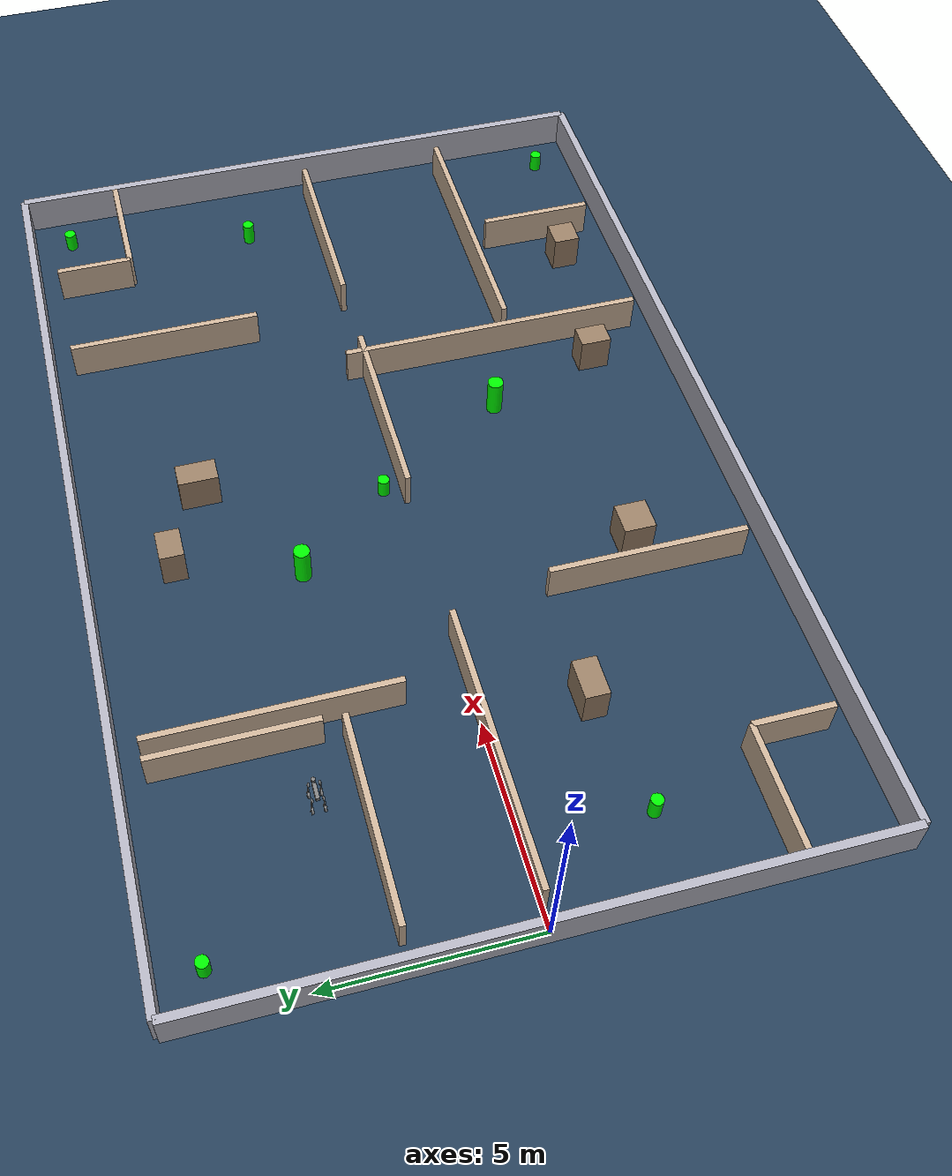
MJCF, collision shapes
<mujoco model="demo2">
  <compiler angle="radian" meshdir="assets" autolimits="true" />
  <option timestep="0.002" gravity="0 0 -9.81" integrator="implicitfast" cone="elliptic" impratio="100" />
  <statistic center="6 0 0.5" extent="8" />
  <visual>
    <headlight diffuse="0.6 0.6 0.6" ambient="0.3 0.3 0.3" specular="0 0 0" />
    <rgba haze="0.15 0.25 0.35 1" />
    <global azimuth="-130" elevation="-20" offwidth="1920" offheight="1080" />
    <quality shadowsize="4096" offsamples="8" />
    <map shadowscale="0.5" shadowclip="1" />
  </visual>
  <default>
    <default class="go2">
      <geom friction="0.4" margin="0.001" condim="1" />
      <joint axis="0 1 0" damping="0.1" armature="0.01" frictionloss="0.2" />
      <motor ctrlrange="-23.7 23.7" />
      <default class="abduction">
        <joint axis="1 0 0" range="-1.0472 1.0472" />
      </default>
      <default class="hip">
        <default class="front_hip">
          <joint range="-1.5708 3.4907" />
        </default>
        <default class="back_hip">
          <joint range="-0.5236 4.5379" />
        </default>
      </default>
      <default class="knee">
        <joint range="-2.7227 -0.83776" />
        <motor ctrlrange="-45.43 45.43" />
      </default>
      <default class="visual">
        <geom type="mesh" contype="0" conaffinity="0" group="2" />
      </default>
      <default class="collision">
        <geom group="3" />
        <default class="foot">
          <geom size="0.022" pos="-0.002 0 -0.2264" priority="1" condim="6" friction="0.8 0.02 0.01" />
        </default>
      </default>
    </default>
    <default class="world">
      <geom contype="1" conaffinity="1" />
    </default>
  </default>
  <asset>
    <texture type="skybox" builtin="gradient" rgb1="0.3 0.5 0.7" rgb2="0 0 0" width="512" height="3072" />
    <texture type="2d" name="groundplane" builtin="checker" mark="edge" rgb1="0.2 0.3 0.4" rgb2="0.1 0.2 0.3" markrgb="0.8 0.8 0.8" width="300" height="300" />
    <material name="groundplane" texture="groundplane" texuniform="true" texrepeat="5 5" reflectance="0.2" />
    <material name="metal" rgba=".9 .95 .95 1" />
    <material name="black" rgba="0 0 0 1" />
    <material name="white" rgba="1 1 1 1" />
    <material name="gray" rgba="0.671705 0.692426 0.774270 1" />
    <mesh file="base_0.obj" />
    <mesh file="base_1.obj" />
    <mesh file="base_2.obj" />
    <mesh file="base_3.obj" />
    <mesh file="base_4.obj" />
    <mesh file="hip_0.obj" />
    <mesh file="hip_1.obj" />
    <mesh file="thigh_0.obj" />
    <mesh file="thigh_1.obj" />
    <mesh file="thigh_mirror_0.obj" />
    <mesh file="thigh_mirror_1.obj" />
    <mesh file="calf_mirror_0.obj" />
    <mesh file="calf_mirror_1.obj" />
    <mesh file="calf.stl" />
    <mesh file="calf_mirror.stl" />
    <mesh file="foot.obj" />
    <mesh file="wheel.stl" />
    <material name="wall_mat" rgba="0.7 0.7 0.75 1" />
    <material name="divider_mat" rgba="0.8 0.7 0.6 1" />
    <material name="green_mat" rgba="0.0 1.0 0.0 1" specular="0.3" />
    <material name="obstacle_mat" rgba="0.6 0.5 0.4 1" />
  </asset>
  <worldbody>
    <light pos="12 0 10" dir="0 0 -1" directional="true" diffuse="0.8 0.8 0.8" castshadow="true" />
    <geom name="ground" type="plane" size="50 50 0.1" material="groundplane" class="world" />
    <body name="base_link" pos="4.0 4.0 0.6" childclass="go2">
      <inertial pos="0.021112 0 -0.005366" quat="-0.000543471 0.713435 -0.00173769 0.700719" mass="6.921" diaginertia="0.107027 0.0980771 0.0244531" />
      <freejoint name="root" />
      <geom mesh="base_0" material="black" class="visual" />
      <geom mesh="base_1" material="black" class="visual" />
      <geom mesh="base_2" material="black" class="visual" />
      <geom mesh="base_3" material="white" class="visual" />
      <geom mesh="base_4" material="gray" class="visual" />
      <geom name="base_collision" size="0.1881 0.04675 0.057" type="box" class="collision" />
      <geom name="head_upper_collision" size="0.05 0.045" pos="0.285 0 0.01" type="cylinder" class="collision" />
      <geom name="head_lower_collision" size="0.047" pos="0.293 0 -0.06" class="collision" />
      <site name="base_link_site" pos="0 0 0" size="0.01" />
      <site name="imu" pos="-0.02557 0 0.04232" size="0.01" />
      <!-- Mid-360 mount tilt: pitch 0.263591 rad (15.10°) + roll -0.036809 rad. Matches real-robot calibration (scripts/real/onboard_fastlio_noetic.sh:258, 2026-04-17). quat = ROS RPY (Rz*Ry*Rx). -->
      <site name="livox_mid360" pos="0.16143 0 0.12262" quat="0.991160 -0.018244 0.131392 0.002418" size="0.01" />
      <camera name="front_camera" pos="0.30 0 -0.01" xyaxes="0 -1 0 0.0872 0 0.9962" fovy="80" resolution="1280 720" mode="fixed" />
      <body name="FL_hip" pos="0.1934 0.0465 0">
        <inertial pos="-0.0054 0.00194 -0.000105" quat="0.497014 0.499245 0.505462 0.498237" mass="0.678" diaginertia="0.00088403 0.000596003 0.000479967" />
        <joint name="FL_hip_joint" class="abduction" />
        <geom mesh="hip_0" material="metal" class="visual" />
        <geom mesh="hip_1" material="gray" class="visual" />
        <geom name="FL_hip_collision" size="0.046 0.02" pos="0 0.08 0" quat="1 1 0 0" type="cylinder" class="collision" />
        <body name="FL_thigh" pos="0 0.0955 0">
          <inertial pos="-0.00374 -0.0223 -0.0327" quat="0.829533 0.0847635 -0.0200632 0.551623" mass="1.152" diaginertia="0.00594973 0.00584149 0.000878787" />
          <joint name="FL_thigh_joint" class="front_hip" />
          <geom mesh="thigh_0" material="metal" class="visual" />
          <geom mesh="thigh_1" material="gray" class="visual" />
          <geom name="FL_thigh_collision" size="0.1065 0.01225 0.017" pos="0 0 -0.1065" quat="0.707107 0 0.707107 0" type="box" class="collision" />
          <body name="FL_calf" pos="0 0 -0.213">
            <inertial pos="0.00629595 -0.000622121 -0.141417" quat="0.710672 0.00154099 -0.00450087 0.703508" mass="0.241352" diaginertia="0.0014901 0.00146356 5.31397e-05" />
            <joint name="FL_calf_joint" class="knee" />
            <geom mesh="calf" material="gray" class="visual" />
            <geom name="FL_calf_upper_collision" size="0.012 0.06" pos="0.008 0 -0.06" quat="0.994493 0 -0.104807 0" type="cylinder" class="collision" />
            <geom name="FL_calf_lower_collision" size="0.011 0.0325" pos="0.02 0 -0.148" quat="0.999688 0 0.0249974 0" type="cylinder" class="collision" />
            <body name="FL_foot" pos="0 0 -0.2264">
              <inertial pos="-0.0 0.04 -0.0" quat="0.661419 0.248219 0.250051 0.662108" mass="0.98" diaginertia="0.003 0.0016 0.0016" />
              <joint name="FL_foot_joint" pos="0 0 0" axis="0 1 0" />
              <geom type="mesh" rgba="0.15 0.15 0.15 1" mesh="wheel" pos="0 0.0 0" quat="0.0 1.0 0.0 0.0" class="visual" />
              <geom name="FL_wheel_collision" type="cylinder" size="0.086 0.026" pos="0 0 0" quat="0.707107 0.707107 0 0" class="collision" condim="6" priority="1" friction="0.8 0.02 0.01" />
              <site name="FL_foot_site" pos="0 0.04 0" size="0.01" />
            </body>
          </body>
        </body>
      </body>
      <body name="FR_hip" pos="0.1934 -0.0465 0">
        <inertial pos="-0.0054 -0.00194 -0.000105" quat="0.498237 0.505462 0.499245 0.497014" mass="0.678" diaginertia="0.00088403 0.000596003 0.000479967" />
        <joint name="FR_hip_joint" class="abduction" />
        <geom mesh="hip_0" material="metal" class="visual" quat="4.63268e-05 1 0 0" />
        <geom mesh="hip_1" material="gray" class="visual" quat="4.63268e-05 1 0 0" />
        <geom name="FR_hip_collision" size="0.046 0.02" pos="0 -0.08 0" quat="0.707107 0.707107 0 0" type="cylinder" class="collision" />
        <body name="FR_thigh" pos="0 -0.0955 0">
          <inertial pos="-0.00374 0.0223 -0.0327" quat="0.551623 -0.0200632 0.0847635 0.829533" mass="1.152" diaginertia="0.00594973 0.00584149 0.000878787" />
          <joint name="FR_thigh_joint" class="front_hip" />
          <geom mesh="thigh_mirror_0" material="metal" class="visual" />
          <geom mesh="thigh_mirror_1" material="gray" class="visual" />
          <geom name="FR_thigh_collision" size="0.1065 0.01225 0.017" pos="0 0 -0.1065" quat="0.707107 0 0.707107 0" type="box" class="collision" />
          <body name="FR_calf" pos="0 0 -0.213">
            <inertial pos="0.00629595 0.000622121 -0.141417" quat="0.703508 -0.00450087 0.00154099 0.710672" mass="0.241352" diaginertia="0.0014901 0.00146356 5.31397e-05" />
            <joint name="FR_calf_joint" class="knee" />
            <geom mesh="calf_mirror" material="gray" class="visual" />
            <geom name="FR_calf_upper_collision" size="0.013 0.06" pos="0.01 0 -0.06" quat="0.995004 0 -0.0998334 0" type="cylinder" class="collision" />
            <geom name="FR_calf_lower_collision" size="0.011 0.0325" pos="0.02 0 -0.148" quat="0.999688 0 0.0249974 0" type="cylinder" class="collision" />
            <body name="FR_foot" pos="0 0 -0.2264">
              <inertial pos="-0.0 -0.04 -0.0" quat="0.661419 0.248219 0.250051 0.662108" mass="0.98" diaginertia="0.003 0.0016 0.0016" />
              <joint name="FR_foot_joint" pos="0 0 0" axis="0 1 0" />
              <geom type="mesh" rgba="0.15 0.15 0.15 1" mesh="wheel" pos="0 -0.0 0" class="visual" />
              <geom name="FR_wheel_collision" type="cylinder" size="0.086 0.026" pos="0 0 0" quat="0.707107 0.707107 0 0" class="collision" condim="6" priority="1" friction="0.8 0.02 0.01" />
              <site name="FR_foot_site" pos="0 -0.04 0" size="0.01" />
            </body>
          </body>
        </body>
      </body>
      <body name="RL_hip" pos="-0.1934 0.0465 0">
        <inertial pos="0.0054 0.00194 -0.000105" quat="0.505462 0.498237 0.497014 0.499245" mass="0.678" diaginertia="0.00088403 0.000596003 0.000479967" />
        <joint name="RL_hip_joint" class="abduction" />
        <geom mesh="hip_0" material="metal" class="visual" quat="4.63268e-05 0 1 0" />
        <geom mesh="hip_1" material="gray" class="visual" quat="4.63268e-05 0 1 0" />
        <geom name="RL_hip_collision" size="0.046 0.02" pos="0 0.08 0" quat="0.707107 0.707107 0 0" type="cylinder" class="collision" />
        <body name="RL_thigh" pos="0 0.0955 0">
          <inertial pos="-0.00374 -0.0223 -0.0327" quat="0.829533 0.0847635 -0.0200632 0.551623" mass="1.152" diaginertia="0.00594973 0.00584149 0.000878787" />
          <joint name="RL_thigh_joint" class="back_hip" />
          <geom mesh="thigh_0" material="metal" class="visual" />
          <geom mesh="thigh_1" material="gray" class="visual" />
          <geom name="RL_thigh_collision" size="0.1065 0.01225 0.017" pos="0 0 -0.1065" quat="0.707107 0 0.707107 0" type="box" class="collision" />
          <body name="RL_calf" pos="0 0 -0.213">
            <inertial pos="0.00629595 -0.000622121 -0.141417" quat="0.710672 0.00154099 -0.00450087 0.703508" mass="0.241352" diaginertia="0.0014901 0.00146356 5.31397e-05" />
            <joint name="RL_calf_joint" class="knee" />
            <geom mesh="calf" material="gray" class="visual" />
            <geom name="RL_calf_upper_collision" size="0.013 0.06" pos="0.01 0 -0.06" quat="0.995004 0 -0.0998334 0" type="cylinder" class="collision" />
            <geom name="RL_calf_lower_collision" size="0.011 0.0325" pos="0.02 0 -0.148" quat="0.999688 0 0.0249974 0" type="cylinder" class="collision" />
            <body name="RL_foot" pos="0 0 -0.2264">
              <inertial pos="-0.0 0.04 -0.0" quat="0.661419 0.248219 0.250051 0.662108" mass="0.98" diaginertia="0.003 0.0016 0.0016" />
              <joint name="RL_foot_joint" pos="0 0 0" axis="0 1 0" />
              <geom type="mesh" rgba="0.15 0.15 0.15 1" mesh="wheel" pos="0 0.0 0" quat="0.0 1.0 0.0 0.0" class="visual" />
              <geom name="RL_wheel_collision" type="cylinder" size="0.086 0.026" pos="0 0 0" quat="0.707107 0.707107 0 0" class="collision" condim="6" priority="1" friction="0.8 0.02 0.01" />
              <site name="RL_foot_site" pos="0 0.04 0" size="0.01" />
            </body>
          </body>
        </body>
      </body>
      <body name="RR_hip" pos="-0.1934 -0.0465 0">
        <inertial pos="0.0054 -0.00194 -0.000105" quat="0.499245 0.497014 0.498237 0.505462" mass="0.678" diaginertia="0.00088403 0.000596003 0.000479967" />
        <joint name="RR_hip_joint" class="abduction" />
        <geom mesh="hip_0" material="metal" class="visual" quat="2.14617e-09 4.63268e-05 4.63268e-05 -1" />
        <geom mesh="hip_1" material="gray" class="visual" quat="2.14617e-09 4.63268e-05 4.63268e-05 -1" />
        <geom name="RR_hip_collision" size="0.046 0.02" pos="0 -0.08 0" quat="0.707107 0.707107 0 0" type="cylinder" class="collision" />
        <body name="RR_thigh" pos="0 -0.0955 0">
          <inertial pos="-0.00374 0.0223 -0.0327" quat="0.551623 -0.0200632 0.0847635 0.829533" mass="1.152" diaginertia="0.00594973 0.00584149 0.000878787" />
          <joint name="RR_thigh_joint" class="back_hip" />
          <geom mesh="thigh_mirror_0" material="metal" class="visual" />
          <geom mesh="thigh_mirror_1" material="gray" class="visual" />
          <geom name="RR_thigh_collision" size="0.1065 0.01225 0.017" pos="0 0 -0.1065" quat="0.707107 0 0.707107 0" type="box" class="collision" />
          <body name="RR_calf" pos="0 0 -0.213">
            <inertial pos="0.00629595 0.000622121 -0.141417" quat="0.703508 -0.00450087 0.00154099 0.710672" mass="0.241352" diaginertia="0.0014901 0.00146356 5.31397e-05" />
            <joint name="RR_calf_joint" class="knee" />
            <geom mesh="calf_mirror" material="gray" class="visual" />
            <geom name="RR_calf_upper_collision" size="0.013 0.06" pos="0.01 0 -0.06" quat="0.995004 0 -0.0998334 0" type="cylinder" class="collision" />
            <geom name="RR_calf_lower_collision" size="0.011 0.0325" pos="0.02 0 -0.148" quat="0.999688 0 0.0249974 0" type="cylinder" class="collision" />
            <body name="RR_foot" pos="0 0 -0.2264">
              <inertial pos="-0.0 -0.04 -0.0" quat="0.661419 0.248219 0.250051 0.662108" mass="0.98" diaginertia="0.003 0.0016 0.0016" />
              <joint name="RR_foot_joint" pos="0 0 0" axis="0 1 0" />
              <geom type="mesh" rgba="0.15 0.15 0.15 1" mesh="wheel" pos="0 -0.00 0" class="visual" />
              <geom name="RR_wheel_collision" type="cylinder" size="0.086 0.026" pos="0 0 0" quat="0.707107 0.707107 0 0" class="collision" condim="6" priority="1" friction="0.8 0.02 0.01" />
              <site name="RR_foot_site" pos="0 -0.04 0" size="0.01" />
            </body>
          </body>
        </body>
      </body>
    </body>
    <geom name="wall_north" type="box" pos="12.00 8.10 0.5" size="12.100 0.100 0.5" material="wall_mat" class="world" />
    <geom name="wall_south" type="box" pos="12.00 -8.10 0.5" size="12.100 0.100 0.5" material="wall_mat" class="world" />
    <geom name="wall_west" type="box" pos="-0.10 0.00 0.5" size="0.100 8.100 0.5" material="wall_mat" class="world" />
    <geom name="wall_east" type="box" pos="24.10 0.00 0.5" size="0.100 8.100 0.5" material="wall_mat" class="world" />
    <geom name="divider_h_1" type="box" pos="4.00 0.00 0.5" size="3.500 0.075 0.5" material="divider_mat" class="world" />
    <geom name="divider_h_2" type="box" pos="14.00 0.00 0.5" size="2.500 0.075 0.5" material="divider_mat" class="world" />
    <geom name="divider_h_3" type="box" pos="21.00 0.00 0.5" size="2.500 0.075 0.5" material="divider_mat" class="world" />
    <geom name="divider_v_nw" type="box" pos="6.00 4.50 0.5" size="0.075 3.000 0.5" material="divider_mat" class="world" />
    <geom name="divider_v_ne" type="box" pos="18.00 5.00 0.5" size="0.075 2.500 0.5" material="divider_mat" class="world" />
    <geom name="divider_v_sw" type="box" pos="8.00 -5.00 0.5" size="0.075 2.500 0.5" material="divider_mat" class="world" />
    <geom name="divider_v_se" type="box" pos="16.00 -3.50 0.5" size="0.075 4.000 0.5" material="divider_mat" class="world" />
    <geom name="corridor_nw_h" type="box" pos="3.00 3.00 0.5" size="2.500 0.075 0.5" material="divider_mat" class="world" />
    <geom name="corridor_nw_v" type="box" pos="5.50 5.50 0.5" size="0.075 2.000 0.5" material="divider_mat" class="world" />
    <geom name="tjunc_se_h" type="box" pos="20.00 -4.00 0.5" size="3.500 0.075 0.5" material="divider_mat" class="world" />
    <geom name="tjunc_se_v" type="box" pos="20.00 -6.00 0.5" size="0.075 1.500 0.5" material="divider_mat" class="world" />
    <geom name="room1_w" type="box" pos="21.00 6.50 0.5" size="0.075 1.000 0.5" material="divider_mat" class="world" />
    <geom name="room1_s" type="box" pos="22.50 5.50 0.5" size="1.500 0.075 0.5" material="divider_mat" class="world" />
    <geom name="room2_e" type="box" pos="3.00 -6.50 0.5" size="0.075 1.000 0.5" material="divider_mat" class="world" />
    <geom name="room2_n" type="box" pos="1.50 -5.50 0.5" size="1.500 0.075 0.5" material="divider_mat" class="world" />
    <geom name="pillar_1" type="cylinder" pos="10.00 3.00 0.50" size="0.20 0.50" material="green_mat" class="world" />
    <geom name="pillar_2" type="cylinder" pos="14.00 -3.00 0.50" size="0.20 0.50" material="green_mat" class="world" />
    <geom name="pillar_3" type="cylinder" pos="2.00 -3.00 0.30" size="0.15 0.30" material="green_mat" class="world" />
    <geom name="pillar_4" type="cylinder" pos="22.00 2.00 0.30" size="0.15 0.30" material="green_mat" class="world" />
    <geom name="crate_1" type="box" pos="9.00 -5.00 0.5" size="0.400 0.400 0.5" material="obstacle_mat" class="world" />
    <geom name="crate_2" type="box" pos="13.00 5.00 0.5" size="0.300 0.500 0.5" material="obstacle_mat" class="world" />
    <geom name="crate_3" type="box" pos="5.00 -2.50 0.5" size="0.500 0.300 0.5" material="obstacle_mat" class="world" />
    <geom name="crate_4" type="box" pos="19.00 -6.50 0.5" size="0.350 0.350 0.5" material="obstacle_mat" class="world" />
    <geom name="crate_5" type="box" pos="11.00 6.00 0.5" size="0.400 0.300 0.5" material="obstacle_mat" class="world" />
    <geom name="crate_6" type="box" pos="15.00 -6.00 0.5" size="0.300 0.400 0.5" material="obstacle_mat" class="world" />
    <geom name="marker_1" type="cylinder" pos="1.00 7.00 0.25" size="0.15 0.25" material="green_mat" class="world" />
    <geom name="marker_2" type="cylinder" pos="23.00 -7.00 0.25" size="0.15 0.25" material="green_mat" class="world" />
    <geom name="marker_3" type="cylinder" pos="12.00 0.50 0.25" size="0.15 0.25" material="green_mat" class="world" />
    <geom name="marker_4" type="cylinder" pos="23.00 7.00 0.25" size="0.15 0.25" material="green_mat" class="world" />
  </worldbody>
  <actuator>
    <motor class="abduction" name="FL_hip" joint="FL_hip_joint" />
    <motor class="front_hip" name="FL_thigh" joint="FL_thigh_joint" />
    <motor class="knee" name="FL_calf" joint="FL_calf_joint" />
    <motor class="abduction" name="FR_hip" joint="FR_hip_joint" />
    <motor class="front_hip" name="FR_thigh" joint="FR_thigh_joint" />
    <motor class="knee" name="FR_calf" joint="FR_calf_joint" />
    <motor class="abduction" name="RL_hip" joint="RL_hip_joint" />
    <motor class="back_hip" name="RL_thigh" joint="RL_thigh_joint" />
    <motor class="knee" name="RL_calf" joint="RL_calf_joint" />
    <motor class="abduction" name="RR_hip" joint="RR_hip_joint" />
    <motor class="back_hip" name="RR_thigh" joint="RR_thigh_joint" />
    <motor class="knee" name="RR_calf" joint="RR_calf_joint" />
    <velocity name="FL_wheel" joint="FL_foot_joint" ctrlrange="-15 15" kv="5.0" />
    <velocity name="FR_wheel" joint="FR_foot_joint" ctrlrange="-15 15" kv="5.0" />
    <velocity name="RL_wheel" joint="RL_foot_joint" ctrlrange="-15 15" kv="5.0" />
    <velocity name="RR_wheel" joint="RR_foot_joint" ctrlrange="-15 15" kv="5.0" />
  </actuator>
  <sensor>
    <accelerometer name="imu_accel" site="imu" />
    <gyro name="imu_gyro" site="imu" />
    <touch name="FL_foot_contact" site="FL_foot_site" />
    <touch name="FR_foot_contact" site="FR_foot_site" />
    <touch name="RL_foot_contact" site="RL_foot_site" />
    <touch name="RR_foot_contact" site="RR_foot_site" />
    <framepos name="base_pos" objtype="site" objname="base_link_site" />
    <framequat name="base_quat" objtype="site" objname="base_link_site" />
    <framelinvel name="base_linvel" objtype="site" objname="base_link_site" />
    <frameangvel name="base_angvel" objtype="site" objname="base_link_site" />
  </sensor>
</mujoco>
